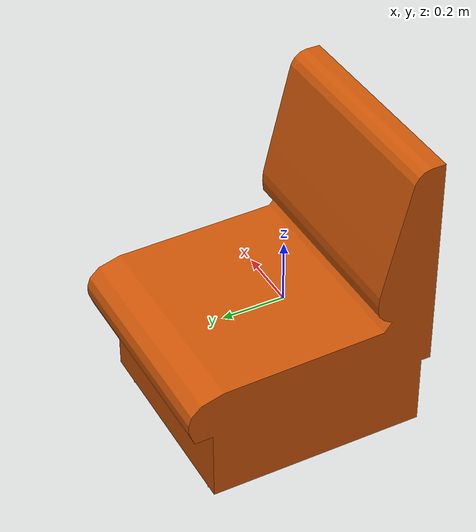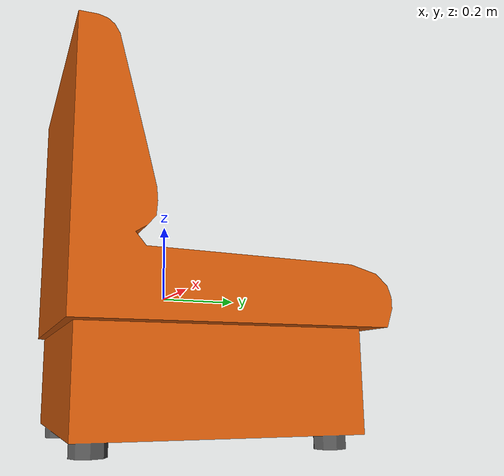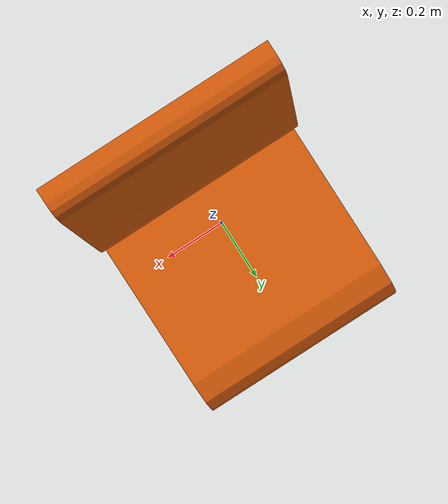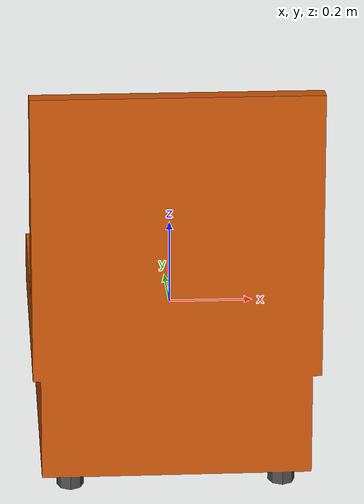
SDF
<?xml version='1.0'?>
<sdf version='1.5'>
  <model name="soft_chair">
    <pose>0 0 0 0 0 0</pose>
    <static>false</static>
    <link name='model_body'>
      <visual name="visual">
        <geometry>
          <mesh>
            <uri>model://robert_gazebo/meshes/soft_chair_visual_orange.dae</uri>
            <scale>1 1 1</scale>
          </mesh>
         </geometry>
      </visual>

      <collision name="collision">
        <geometry>
          <mesh>
            <uri>model://robert_gazebo/meshes/soft_chair_collision.dae</uri>
            <scale>1 1 1</scale>
          </mesh>
        </geometry>
      </collision>

      <inertial>
        <pose> 0 0 0 0 0 0</pose>
        <inertia>
          <ixx>1.225</ixx>
          <ixy>0</ixy>
          <ixz>0</ixz>
          <iyy>1.1</iyy>
          <iyz>0</iyz>
          <izz>0.8625</izz>
        </inertia>
        <mass>15.0</mass>
      </inertial>
    </link>
  </model>
</sdf>
